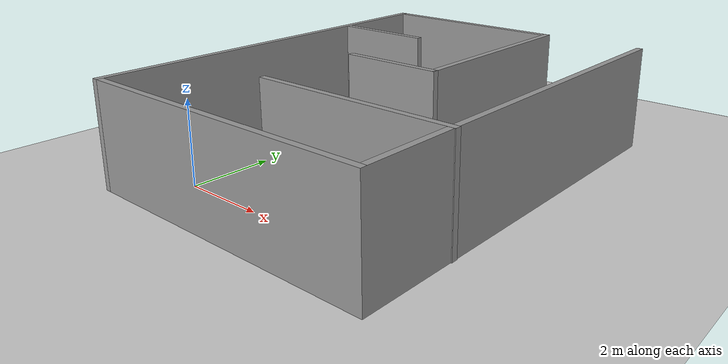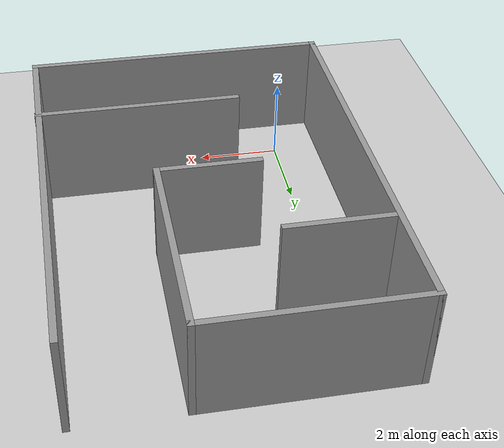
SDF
<sdf version="1.7">
 <world name="default">
  <light name="sun" type="directional">
   <pose>0 0 10 0 -0 0</pose>
   <diffuse>0.8 0.8 0.8 1</diffuse>
   <specular>0.2 0.2 0.2 1</specular>
   <attenuation>
    <range>1000</range>
    <constant>0.9</constant>
    <linear>0.01</linear>
    <quadratic>0.001</quadratic>
   </attenuation>
   <direction>-0.5 0.1 -0.9</direction>
   <spot><inner_angle>0</inner_angle><outer_angle>0</outer_angle><falloff>0</falloff></spot>
  </light>
  <model name="ground_plane">
   <static>1</static>
   <link name="link">
    <collision name="collision">
     <geometry><plane><normal>0 0 1</normal><size>100 100</size></plane></geometry>
     <surface>
      <contact><collide_bitmask>65535</collide_bitmask></contact>
      <friction><ode><mu>100</mu><mu2>50</mu2></ode></friction>
     </surface>
    </collision>
    <visual name="visual">
     <cast_shadows>0</cast_shadows>
     <geometry><plane><normal>0 0 1</normal><size>100 100</size></plane></geometry>
     <material>
      <script><uri>file://media/materials/scripts/gazebo.material</uri><name>Gazebo/Grey</name></script>
     </material>
    </visual>
   </link>
  </model>
  <gravity>0 0 -9.8</gravity>
  <magnetic_field>6e-06 2.3e-05 -4.2e-05</magnetic_field>
  <atmosphere type="adiabatic"/>
  <physics type="ode">
   <max_step_size>0.001</max_step_size>
   <real_time_factor>1</real_time_factor>
   <real_time_update_rate>1000</real_time_update_rate>
  </physics>
  <scene><ambient>0.4 0.4 0.4 1</ambient><background>0.7 0.7 0.7 1</background><shadows>1</shadows></scene>
  <audio><device>default</device></audio>
  <spherical_coordinates>
   <surface_model>EARTH_WGS84</surface_model>
   <latitude_deg>0</latitude_deg>
   <longitude_deg>0</longitude_deg>
   <elevation>0</elevation>
   <heading_deg>0</heading_deg>
  </spherical_coordinates>
  <model name="maze2">
   <pose>2.98521 3.64786 0 0 -0 0</pose>
   <link name="Wall_0">
    <collision name="Wall_0_Collision">
     <geometry><box><size>7.5 0.15 2.5</size></box></geometry>
     <pose>0 0 1.25 0 -0 0</pose>
    </collision>
    <visual name="Wall_0_Visual">
     <pose>0 0 1.25 0 -0 0</pose>
     <geometry><box><size>7.5 0.15 2.5</size></box></geometry>
     <material>
      <script><uri>file://media/materials/scripts/gazebo.material</uri><name>Gazebo/Grey</name></script>
      <ambient>1 1 1 1</ambient>
     </material>
     <meta><layer>0</layer></meta>
    </visual>
    <pose>-0.5225 -4.925 0 0 -0 3.14159</pose>
   </link>
   <link name="Wall_1">
    <collision name="Wall_1_Collision">
     <geometry><box><size>10 0.15 2.5</size></box></geometry>
     <pose>0 0 1.25 0 -0 0</pose>
    </collision>
    <visual name="Wall_1_Visual">
     <pose>0 0 1.25 0 -0 0</pose>
     <geometry><box><size>10 0.15 2.5</size></box></geometry>
     <material>
      <script><uri>file://media/materials/scripts/gazebo.material</uri><name>Gazebo/Grey</name></script>
      <ambient>1 1 1 1</ambient>
     </material>
     <meta><layer>0</layer></meta>
    </visual>
    <pose>-4.1975 -0 0 0 -0 1.5708</pose>
   </link>
   <link name="Wall_11">
    <collision name="Wall_11_Collision">
     <geometry><box><size>2.5 0.15 2.5</size></box></geometry>
     <pose>0 0 1.25 0 -0 0</pose>
    </collision>
    <visual name="Wall_11_Visual">
     <pose>0 0 1.25 0 -0 0</pose>
     <geometry><box><size>2.5 0.15 2.5</size></box></geometry>
     <material>
      <script><uri>file://media/materials/scripts/gazebo.material</uri><name>Gazebo/Grey</name></script>
      <ambient>1 1 1 1</ambient>
     </material>
     <meta><layer>0</layer></meta>
    </visual>
    <pose>-2.88212 2.49193 0 0 -0 3.14159</pose>
   </link>
   <link name="Wall_13">
    <collision name="Wall_13_Collision">
     <geometry><box><size>5 0.15 2.5</size></box></geometry>
     <pose>0 0 1.25 0 -0 0</pose>
    </collision>
    <visual name="Wall_13_Visual">
     <pose>0 0 1.25 0 -0 0</pose>
     <geometry><box><size>5 0.15 2.5</size></box></geometry>
     <material>
      <script><uri>file://media/materials/scripts/gazebo.material</uri><name>Gazebo/Grey</name></script>
      <ambient>1 1 1 1</ambient>
     </material>
     <meta><layer>0</layer></meta>
    </visual>
    <pose>0.747471 -2.62683 0 0 -0 0</pose>
   </link>
   <link name="Wall_3">
    <collision name="Wall_3_Collision">
     <geometry><box><size>5 0.15 2.5</size></box></geometry>
     <pose>0 0 1.25 0 -0 0</pose>
    </collision>
    <visual name="Wall_3_Visual">
     <pose>0 0 1.25 0 -0 0</pose>
     <geometry><box><size>5 0.15 2.5</size></box></geometry>
     <material>
      <script><uri>file://media/materials/scripts/gazebo.material</uri><name>Gazebo/Grey</name></script>
      <ambient>1 1 1 1</ambient>
     </material>
     <meta><layer>0</layer></meta>
    </visual>
    <pose>-1.7725 4.925 0 0 -0 0</pose>
   </link>
   <link name="Wall_4">
    <collision name="Wall_4_Collision">
     <geometry><box><size>5 0.15 2.5</size></box></geometry>
     <pose>0 0 1.25 0 -0 0</pose>
    </collision>
    <visual name="Wall_4_Visual">
     <pose>0 0 1.25 0 -0 0</pose>
     <geometry><box><size>5 0.15 2.5</size></box></geometry>
     <material>
      <script><uri>file://media/materials/scripts/gazebo.material</uri><name>Gazebo/Grey</name></script>
      <ambient>1 1 1 1</ambient>
     </material>
     <meta><layer>0</layer></meta>
    </visual>
    <pose>0.652501 2.5 0 0 -0 -1.5708</pose>
   </link>
   <link name="Wall_5">
    <collision name="Wall_5_Collision">
     <geometry><box><size>2.5 0.15 2.5</size></box></geometry>
     <pose>0 0 1.25 0 -0 0</pose>
    </collision>
    <visual name="Wall_5_Visual">
     <pose>0 0 1.25 0 -0 0</pose>
     <geometry><box><size>2.5 0.15 2.5</size></box></geometry>
     <material>
      <script><uri>file://media/materials/scripts/gazebo.material</uri><name>Gazebo/Grey</name></script>
      <ambient>1 1 1 1</ambient>
     </material>
     <meta><layer>0</layer></meta>
    </visual>
    <pose>-0.5225 0.075 0 0 -0 3.14159</pose>
   </link>
   <link name="Wall_7">
    <collision name="Wall_7_Collision">
     <geometry><box><size>10 0.15 2.5</size></box></geometry>
     <pose>0 0 1.25 0 -0 0</pose>
    </collision>
    <visual name="Wall_7_Visual">
     <pose>0 0 1.25 0 -0 0</pose>
     <geometry><box><size>10 0.15 2.5</size></box></geometry>
     <material>
      <script><uri>file://media/materials/scripts/gazebo.material</uri><name>Gazebo/Grey</name></script>
      <ambient>1 1 1 1</ambient>
     </material>
     <meta><layer>0</layer></meta>
    </visual>
    <pose>3.1525 -0 0 0 -0 1.5708</pose>
   </link>
   <static>1</static>
  </model>
 </world>
</sdf>
